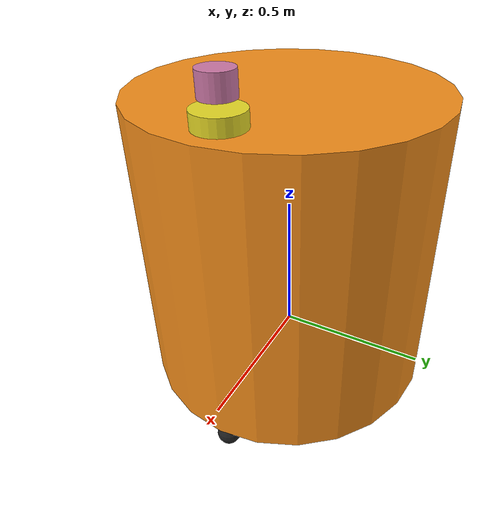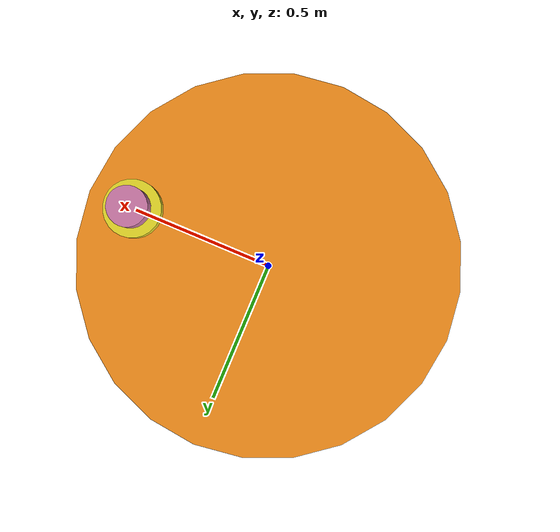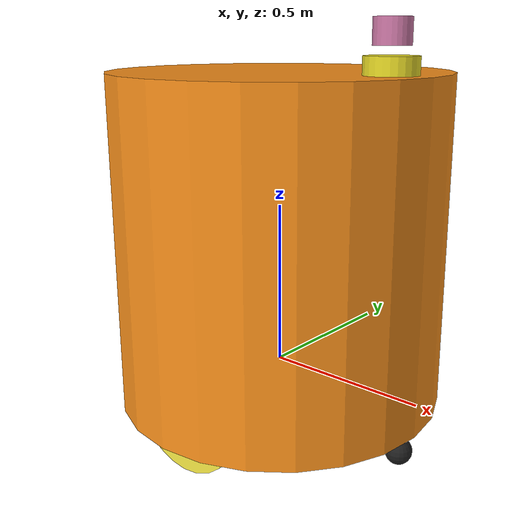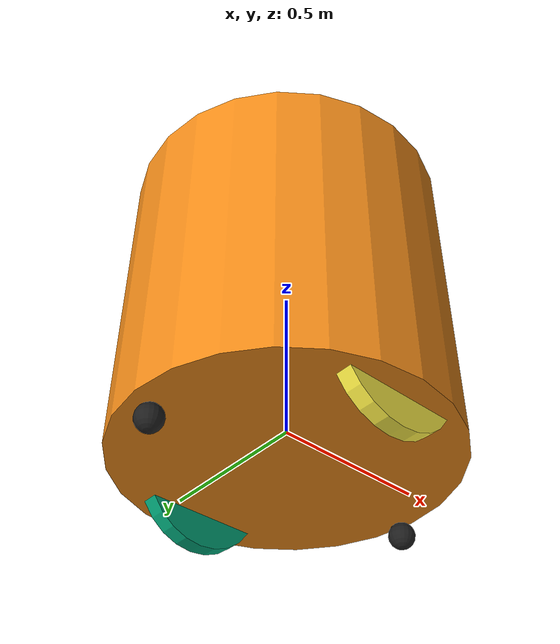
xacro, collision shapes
<?xml version="1.0"?>
<robot xmlns:xacro="http://www.ros.org/wiki/xacro" name="generic_roomba_bot">

    <xacro:property name="bot_mass" default="25.0" />
    <xacro:property name="bot_radius" default="0.5" />
    <xacro:property name="bot_length" default="1.0" />
    <xacro:property name="top_mass" value="${0.1*bot_mass}" />
    <xacro:property name="top_radius" value="${0.15*bot_radius}" />
    <xacro:property name="top_length" value="${0.05*bot_length}" />
    <xacro:property name="wheel_mass" default="1.0" />
    <xacro:property name="wheel_radius" default="0.2" />
    <xacro:property name="wheel_width" default="0.05" />
    <xacro:property name="wheel_sep" value="${2*0.8*bot_radius}" />

    <xacro:include filename="$(find robot_description)/urdf/generic_roomba_bot_gazebo.urdf.xacro" />

    <link name="base_link">
        <inertial>
            <mass value="${bot_mass}" />
            <!-- the wheel axle is where base_link is on, and it should be in the 20% of the bot's height -->
            <origin xyz="0 0 ${0.8*bot_length/2}" />
            <inertia ixx="${1/12 * bot_mass * (3*bot_radius*bot_radius + bot_length*bot_length)}" ixy="0" ixz="0" iyy="${1/12 * bot_mass * (3*bot_radius*bot_radius + bot_length*bot_length)}" iyz="0" izz="${1/2 * bot_mass * (bot_radius*bot_radius)}" />
        </inertial>

        <visual>
            <origin xyz="0 0 ${bot_length/2 - 0.1*bot_length}" />
            <geometry>
                <cylinder radius="${bot_radius}" length="${bot_length}" />
            </geometry>
        </visual>

        <collision>
            <origin xyz="0 0 ${bot_length/2 - 0.1*bot_length}" />
            <geometry>
                <cylinder radius="${bot_radius}" length="${bot_length}" />
            </geometry>
        </collision>
    </link>

    <joint name="base_link2top_link" type="fixed">
        <parent link="base_link" />
        <child link="top_link" />
        <origin xyz="${0.9*bot_radius - top_radius} 0 ${0.9*bot_length + top_length/2}" rpy="0 0 0" />
    </joint>

    <link name="top_link">
        <inertial>
            <mass value="${top_mass}" />
            <!-- the wheel axle is where base_link is on, and it should be in the 20% of the bot's height -->
            <origin xyz="0 0 0" />
            <inertia ixx="${1/12 * top_mass * (3*top_radius*top_radius + top_length*top_length)}" ixy="0" ixz="0" iyy="${1/12 * bot_mass * (3*top_radius*top_radius + top_length*top_length)}" iyz="0" izz="${1/2 * bot_mass * (top_radius*top_radius)}" />
        </inertial>

        <visual>
            <origin xyz="0 0 0" />
            <geometry>
                <cylinder radius="${top_radius}" length="${top_length}" />
            </geometry>
        </visual>

        <collision>
            <origin xyz="0 0 0" />
            <geometry>
                <cylinder radius="${top_radius}" length="${top_length}" />
            </geometry>
        </collision>
    </link>

    <joint name="base_link2left_wheel" type="continuous">
        <parent link="base_link" />
        <child link="left_wheel" />
        <origin xyz="0 ${wheel_sep/2} 0" rpy="-1.5707 0 0" />
        <axis xyz="0 0 1" />
    </joint>

    <link name="left_wheel">
        <inertial>
            <mass value="${wheel_mass}" />
            <origin xyz="0 0 0" />
            <inertia ixx="${1/12 * wheel_mass * (3*wheel_radius*wheel_radius + wheel_width*wheel_width)}" ixy="0" ixz="0" iyy="${1/12 * wheel_mass * (3*wheel_radius*wheel_radius + wheel_width*wheel_width)}" iyz="0" izz="${1/2 * wheel_mass * (wheel_radius*wheel_radius)}" />
        </inertial>

        <visual>
            <geometry>
                <cylinder radius="${wheel_radius}" length="${wheel_width}" />
            </geometry>
        </visual>

        <collision>
            <geometry>
                <cylinder radius="${wheel_radius}" length="${wheel_width}" />
            </geometry>
        </collision>
    </link>

    <joint name="base_link2right_wheel" type="continuous">
        <parent link="base_link" />
        <child link="right_wheel" />
        <origin xyz="0 -${wheel_sep/2} 0" rpy="-1.5707 0 0" />
        <axis xyz="0 0 1" />
    </joint>

    <link name="right_wheel">
        <inertial>
            <mass value="${wheel_mass}" />
            <origin xyz="0 0 0" />
            <inertia ixx="${1/12 * wheel_mass * (3*wheel_radius*wheel_radius + wheel_width*wheel_width)}" ixy="0" ixz="0" iyy="${1/12 * wheel_mass * (3*wheel_radius*wheel_radius + wheel_width*wheel_width)}" iyz="0" izz="${1/2 * wheel_mass * (wheel_radius*wheel_radius)}" />
        </inertial>

        <visual>
            <geometry>
                <cylinder radius="${wheel_radius}" length="${wheel_width}" />
            </geometry>
        </visual>

        <collision>
            <geometry>
                <cylinder radius="${wheel_radius}" length="${wheel_width}" />
            </geometry>
        </collision>
    </link>

    <joint name="base_link2front_caster" type="fixed">
        <parent link="base_link" />
        <child link="front_caster" />
        <origin xyz="${0.9*bot_radius} 0 -${wheel_radius - 0.2*wheel_radius}" rpy="0 0 0" />
    </joint>

    <link name="front_caster">
        <inertial>
            <mass value="${0.4*wheel_mass}" />
            <origin xyz="0 0 0" />
            <inertia ixx="${2/5 * wheel_mass * wheel_radius*wheel_radius}" ixy="0" ixz="0" iyy="${2/5 * wheel_mass * wheel_radius*wheel_radius}" iyz="0" izz="${2/5 * wheel_mass * wheel_radius*wheel_radius}" />
        </inertial>

        <visual>
            <geometry>
                <sphere radius="${0.2*wheel_radius}" />
            </geometry>
        </visual>

        <collision>
            <geometry>
                <sphere radius="${0.2*wheel_radius}" />
            </geometry>
        </collision>
    </link>

    <joint name="base_link2rear_caster" type="fixed">
        <parent link="base_link" />
        <child link="rear_caster" />
        <origin xyz="-${0.9*bot_radius} 0 -${wheel_radius - 0.2*wheel_radius}" rpy="0 0 0" />
    </joint>

    <link name="rear_caster">
        <inertial>
            <mass value="${0.4*wheel_mass}" />
            <origin xyz="0 0 0" />
            <inertia ixx="${2/5 * wheel_mass * wheel_radius*wheel_radius}" ixy="0" ixz="0" iyy="${2/5 * wheel_mass * wheel_radius*wheel_radius}" iyz="0" izz="${2/5 * wheel_mass * wheel_radius*wheel_radius}" />
        </inertial>

        <visual>
            <geometry>
                <sphere radius="${0.2*wheel_radius}" />
            </geometry>
        </visual>

        <collision>
            <geometry>
                <sphere radius="${0.2*wheel_radius}" />
            </geometry>
        </collision>
    </link>

    <!-- Diff drive plugin -->
    <xacro:include filename="$(find robot_description)/urdf/diff_drive_plugin.urdf.xacro" />
    <xacro:diff_drive_plugin namespace="" update_rate="10" left_joint="base_link2left_wheel" right_joint="base_link2right_wheel" wheel_sep="${wheel_sep}" wheel_diam="${2*wheel_radius}" wheel_acc="1.0" wheel_torq="20" />

    <!-- 3-D LiDAR -->
    <xacro:include filename="$(find velodyne_description)/urdf/VLP-16.urdf.xacro" />
    <xacro:VLP-16 parent="top_link" name="velodyne" topic="/velodyne_points" hz="10" samples="100" gpu="false">
        <origin xyz="0 0 ${top_length}" rpy="0 0 0" />
    </xacro:VLP-16>

    <!-- P3D plugin -->
    <xacro:include filename="$(find robot_description)/urdf/p3d_plugin.urdf.xacro"/>
    <xacro:p3d_plugin namespace="" link_name="base_link" frame_name="map">
        <xyz_offsets>0 0 0</xyz_offsets>
        <rpy_offsets>0 0 0</rpy_offsets>
    </xacro:p3d_plugin>

</robot>

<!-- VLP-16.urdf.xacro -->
<robot xmlns:xacro="http://www.ros.org/wiki/xacro" name="VLP-16">
  <xacro:property name="M_PI" value="3.1415926535897931" />
  <xacro:macro name="VLP-16" params="*origin is_sim:=true parent:=base_link name:=velodyne tf_prefix:='' topic:=/velodyne_points organize_cloud:=false hz:=10 lasers:=16 samples:=1875 collision_range:=0.3 min_range:=0.0 max_range:=100.0 noise:=0.008 min_angle:=-${M_PI} max_angle:=${M_PI} gpu:=false">

    <joint name="${name}_base_mount_joint" type="fixed">
      <xacro:insert_block name="origin" />
      <parent link="${parent}"/>
      <child link="${name}_base_link"/>
    </joint>

    <link name="${name}_base_link">
      <inertial>
        <mass value="0.83"/>
        <origin xyz="0 0 0.03585"/>
        <inertia ixx="${(0.83 * (3.0*0.0516*0.0516 + 0.0717*0.0717)) / 12.0}" ixy="0" ixz="0"
          iyy="${(0.83 * (3.0*0.0516*0.0516 + 0.0717*0.0717)) / 12.0}" iyz="0"
          izz="${0.5 * 0.83 * (0.0516*0.0516)}"/>
      </inertial>
      <visual>
        <geometry>
          <mesh filename="package://velodyne_description/meshes/VLP16_base_1.dae" />
        </geometry>
      </visual>
      <visual>
        <geometry>
          <mesh filename="package://velodyne_description/meshes/VLP16_base_2.dae" />
        </geometry>
      </visual>
      <collision>
        <origin rpy="0 0 0" xyz="0 0 0.03585"/>
        <geometry>
          <cylinder radius="0.0516" length="0.0717"/>
        </geometry>
      </collision>
    </link>

    <joint name="${name}_base_scan_joint" type="fixed" >
      <origin xyz="0 0 0.0377" rpy="0 0 0" />
      <parent link="${name}_base_link" />
      <child link="${name}"/>
    </joint>

    <link name="${name}">
      <inertial>
        <mass value="0.01"/>
        <origin xyz="0 0 0"/>
        <inertia ixx="1e-7" ixy="0" ixz="0" iyy="1e-7" iyz="0" izz="1e-7"/>
      </inertial>
      <visual>
        <origin xyz="0 0 -0.0377" />
        <geometry>
          <mesh filename="package://velodyne_description/meshes/VLP16_scan.dae" />
        </geometry>
      </visual>
      <collision>
        <geometry>
          <sphere radius="0"/>
        </geometry>
      </collision>
    </link>

    <!-- Gazebo requires the velodyne_gazebo_plugins package -->
    <xacro:if value="${is_sim}">
        <gazebo reference="${name}">
            <xacro:if value="${gpu}">
                <sensor type="gpu_ray" name="${name}-VLP16">
                <pose>0 0 0 0 0 0</pose>
                <visualize>false</visualize>
                <update_rate>${hz}</update_rate>
                <ray>
                    <scan>
                    <horizontal>
                        <samples>${samples}</samples>
                        <resolution>1</resolution>
                        <min_angle>${min_angle}</min_angle>
                        <max_angle>${max_angle}</max_angle>
                    </horizontal>
                    <vertical>
                        <samples>${lasers}</samples>
                        <resolution>1</resolution>
                        <min_angle>-${15.0*M_PI/180.0}</min_angle>
                        <max_angle> ${15.0*M_PI/180.0}</max_angle>
                    </vertical>
                    </scan>
                    <range>
                    <min>${collision_range}</min>
                    <max>${max_range+1}</max>
                    <resolution>0.001</resolution>
                    </range>
                    <noise>
                    <type>gaussian</type>
                    <mean>0.0</mean>
                    <stddev>0.0</stddev>
                    </noise>
                </ray>
                <plugin name="gazebo_ros_laser_controller" filename="libgazebo_ros_velodyne_laser.so">
                    <ros>
                    <namespace>/${name}</namespace>
                    <remapping>~/out:=${topic}</remapping>
                    </ros>
                    <tf_prefix>${tf_prefix}</tf_prefix>
                    <frame_name>${name}</frame_name>
                    <organize_cloud>${organize_cloud}</organize_cloud>
                    <min_range>${min_range}</min_range>
                    <max_range>${max_range}</max_range>
                    <gaussian_noise>${noise}</gaussian_noise>
                </plugin>
                </sensor>
            </xacro:if>
            <xacro:unless value="${gpu}">
                <sensor type="ray" name="${name}-VLP16">
                <pose>0 0 0 0 0 0</pose>
                <visualize>false</visualize>
                <update_rate>${hz}</update_rate>
                <ray>
                    <scan>
                    <horizontal>
                        <samples>${samples}</samples>
                        <resolution>1</resolution>
                        <min_angle>${min_angle}</min_angle>
                        <max_angle>${max_angle}</max_angle>
                    </horizontal>
                    <vertical>
                        <samples>${lasers}</samples>
                        <resolution>1</resolution>
                        <min_angle>-${15.0*M_PI/180.0}</min_angle>
                        <max_angle> ${15.0*M_PI/180.0}</max_angle>
                    </vertical>
                    </scan>
                    <range>
                    <min>${collision_range}</min>
                    <max>${max_range+1}</max>
                    <resolution>0.001</resolution>
                    </range>
                    <noise>
                    <type>gaussian</type>
                    <mean>0.0</mean>
                    <stddev>0.0</stddev>
                    </noise>
                </ray>
                <plugin name="gazebo_ros_laser_controller" filename="libgazebo_ros_velodyne_laser.so">
                    <ros>
                    <namespace>/${name}</namespace>
                    <remapping>~/out:=${topic}</remapping>
                    </ros>
                    <tf_prefix>${tf_prefix}</tf_prefix>
                    <frame_name>${name}</frame_name>
                    <organize_cloud>${organize_cloud}</organize_cloud>
                    <min_range>${min_range}</min_range>
                    <max_range>${max_range}</max_range>
                    <gaussian_noise>${noise}</gaussian_noise>
                </plugin>
                </sensor>
            </xacro:unless>
        </gazebo>
    </xacro:if>

  </xacro:macro>
</robot>
